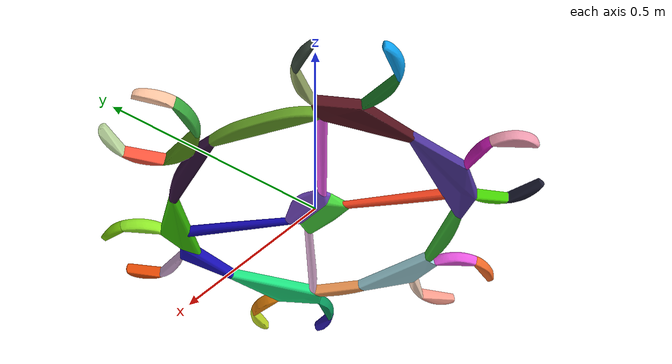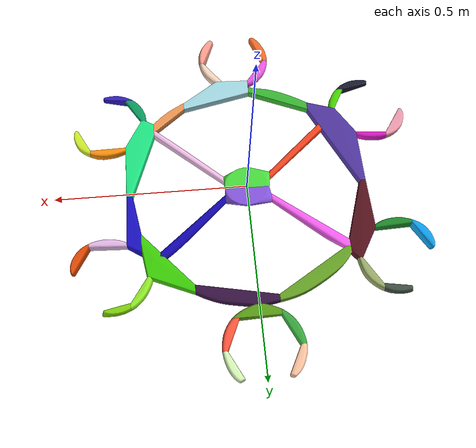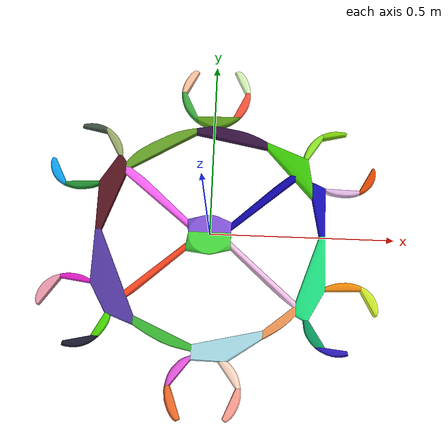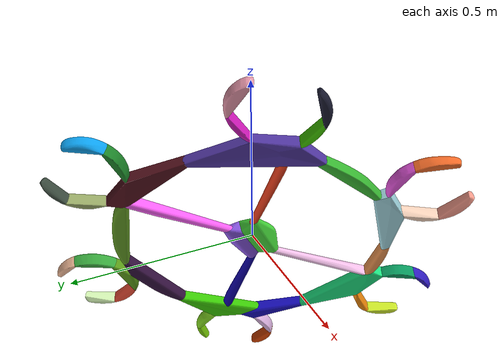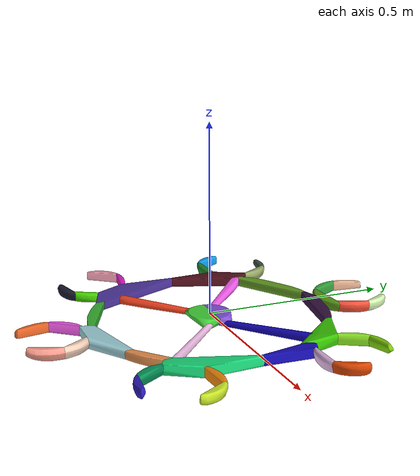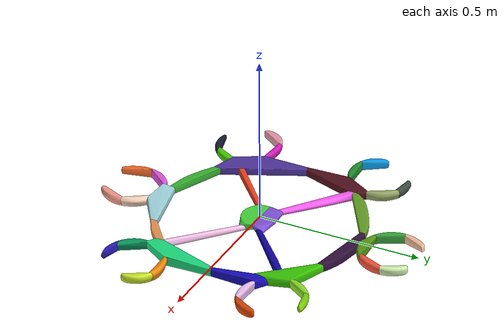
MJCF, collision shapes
<mujoco model="wine_glass_rack_center">
  <default>
    <default class="visual">
      <geom group="2" type="mesh" contype="0" conaffinity="0"/>
    </default>
    <default class="collision">
      <geom group="3" type="mesh"/>
    </default>
  </default>
  <asset>
    <mesh file="wine_glass_rack_center.obj"/>
    <mesh file="wine_glass_rack_center_collision_0.obj"/>
    <mesh file="wine_glass_rack_center_collision_1.obj"/>
    <mesh file="wine_glass_rack_center_collision_2.obj"/>
    <mesh file="wine_glass_rack_center_collision_3.obj"/>
    <mesh file="wine_glass_rack_center_collision_4.obj"/>
    <mesh file="wine_glass_rack_center_collision_5.obj"/>
    <mesh file="wine_glass_rack_center_collision_6.obj"/>
    <mesh file="wine_glass_rack_center_collision_7.obj"/>
    <mesh file="wine_glass_rack_center_collision_8.obj"/>
    <mesh file="wine_glass_rack_center_collision_9.obj"/>
    <mesh file="wine_glass_rack_center_collision_10.obj"/>
    <mesh file="wine_glass_rack_center_collision_11.obj"/>
    <mesh file="wine_glass_rack_center_collision_12.obj"/>
    <mesh file="wine_glass_rack_center_collision_13.obj"/>
    <mesh file="wine_glass_rack_center_collision_14.obj"/>
    <mesh file="wine_glass_rack_center_collision_15.obj"/>
    <mesh file="wine_glass_rack_center_collision_16.obj"/>
    <mesh file="wine_glass_rack_center_collision_17.obj"/>
    <mesh file="wine_glass_rack_center_collision_18.obj"/>
    <mesh file="wine_glass_rack_center_collision_19.obj"/>
    <mesh file="wine_glass_rack_center_collision_20.obj"/>
    <mesh file="wine_glass_rack_center_collision_21.obj"/>
    <mesh file="wine_glass_rack_center_collision_22.obj"/>
    <mesh file="wine_glass_rack_center_collision_23.obj"/>
    <mesh file="wine_glass_rack_center_collision_24.obj"/>
    <mesh file="wine_glass_rack_center_collision_25.obj"/>
    <mesh file="wine_glass_rack_center_collision_26.obj"/>
    <mesh file="wine_glass_rack_center_collision_27.obj"/>
    <mesh file="wine_glass_rack_center_collision_28.obj"/>
    <mesh file="wine_glass_rack_center_collision_29.obj"/>
    <mesh file="wine_glass_rack_center_collision_30.obj"/>
    <mesh file="wine_glass_rack_center_collision_31.obj"/>
    <mesh file="wine_glass_rack_center_collision_32.obj"/>
    <mesh file="wine_glass_rack_center_collision_33.obj"/>
    <mesh file="wine_glass_rack_center_collision_34.obj"/>
    <mesh file="wine_glass_rack_center_collision_35.obj"/>
    <mesh file="wine_glass_rack_center_collision_36.obj"/>
    <mesh file="wine_glass_rack_center_collision_37.obj"/>
    <mesh file="wine_glass_rack_center_collision_38.obj"/>
    <mesh file="wine_glass_rack_center_collision_39.obj"/>
    <mesh file="wine_glass_rack_center_collision_40.obj"/>
  </asset>
  <worldbody>
    <body name="wine_glass_rack_center">
      <geom mesh="wine_glass_rack_center" class="visual"/>
      <geom mesh="wine_glass_rack_center_collision_0" rgba="0.2312351316357827 0.7916796683662719 0.021230891704921317 1" class="collision"/>
      <geom mesh="wine_glass_rack_center_collision_1" rgba="0.9311220019946362 0.5828176247583083 0.31777846854400305 1" class="collision"/>
      <geom mesh="wine_glass_rack_center_collision_2" rgba="0.4925270351944723 0.818322192743814 0.03783316834204653 1" class="collision"/>
      <geom mesh="wine_glass_rack_center_collision_3" rgba="0.2754678177465206 0.8254852383760434 0.008118313194254045 1" class="collision"/>
      <geom mesh="wine_glass_rack_center_collision_4" rgba="0.8054845307577458 0.9154357270536961 0.1605311177482378 1" class="collision"/>
      <geom mesh="wine_glass_rack_center_collision_5" rgba="0.9652457451918555 0.828470797108509 0.7377031648374289 1" class="collision"/>
      <geom mesh="wine_glass_rack_center_collision_6" rgba="0.030633077024594058 0.6025026952972568 0.3672323693901407 1" class="collision"/>
      <geom mesh="wine_glass_rack_center_collision_7" rgba="0.605195319395541 0.6753548797337352 0.4100527281499491 1" class="collision"/>
      <geom mesh="wine_glass_rack_center_collision_8" rgba="0.33153221414010103 0.07147386537492739 0.11545612930818294 1" class="collision"/>
      <geom mesh="wine_glass_rack_center_collision_9" rgba="0.3120281259569144 0.20922385385426534 0.6229194241830153 1" class="collision"/>
      <geom mesh="wine_glass_rack_center_collision_10" rgba="0.11161177833030889 0.8851460989228362 0.502880900659646 1" class="collision"/>
      <geom mesh="wine_glass_rack_center_collision_11" rgba="0.5582589757076499 0.9102526767429725 0.15484081541431938 1" class="collision"/>
      <geom mesh="wine_glass_rack_center_collision_12" rgba="0.24939486507358088 0.31232953223149273 0.26382541728953024 1" class="collision"/>
      <geom mesh="wine_glass_rack_center_collision_13" rgba="0.9765737747909278 0.5557162453670921 0.048656783247363444 1" class="collision"/>
      <geom mesh="wine_glass_rack_center_collision_14" rgba="0.18944846228834755 0.11216455372492595 0.7495134485934738 1" class="collision"/>
      <geom mesh="wine_glass_rack_center_collision_15" rgba="0.10459748987880146 0.1076951089257725 0.19172700250655295 1" class="collision"/>
      <geom mesh="wine_glass_rack_center_collision_16" rgba="0.0954778050368198 0.055248507088398124 0.7453152789947944 1" class="collision"/>
      <geom mesh="wine_glass_rack_center_collision_17" rgba="0.9864401476981071 0.3748348034328891 0.9639362565549039 1" class="collision"/>
      <geom mesh="wine_glass_rack_center_collision_18" rgba="0.9670321721298164 0.26716006135042913 0.12319638303883218 1" class="collision"/>
      <geom mesh="wine_glass_rack_center_collision_19" rgba="0.4003923731395409 0.6342544842817098 0.14689111338878835 1" class="collision"/>
      <geom mesh="wine_glass_rack_center_collision_20" rgba="0.2810098626940054 0.8574731979230097 0.2371819236614956 1" class="collision"/>
      <geom mesh="wine_glass_rack_center_collision_21" rgba="0.9507349750298426 0.7501423609262644 0.9132756636978733 1" class="collision"/>
      <geom mesh="wine_glass_rack_center_collision_22" rgba="0.9866676991615806 0.3309326923769853 0.2317663999975632 1" class="collision"/>
      <geom mesh="wine_glass_rack_center_collision_23" rgba="0.8775641139235979 0.2827382874410702 0.018601256911820463 1" class="collision"/>
      <geom mesh="wine_glass_rack_center_collision_24" rgba="0.6375613002615167 0.845983909616981 0.8832381611912272 1" class="collision"/>
      <geom mesh="wine_glass_rack_center_collision_25" rgba="0.06916915717280814 0.02355941701503017 0.6806478275358822 1" class="collision"/>
      <geom mesh="wine_glass_rack_center_collision_26" rgba="0.9142047434497699 0.34008009704037456 0.8804367280919411 1" class="collision"/>
      <geom mesh="wine_glass_rack_center_collision_27" rgba="0.35641631039236976 0.6101242711886117 0.09471628461047277 1" class="collision"/>
      <geom mesh="wine_glass_rack_center_collision_28" rgba="0.8916832346957785 0.7256384657426962 0.9096937063803308 1" class="collision"/>
      <geom mesh="wine_glass_rack_center_collision_29" rgba="0.5213450685169122 0.33085811866514914 0.8653968204604254 1" class="collision"/>
      <geom mesh="wine_glass_rack_center_collision_30" rgba="0.9240006752568686 0.6020822524218955 0.6790156573897684 1" class="collision"/>
      <geom mesh="wine_glass_rack_center_collision_31" rgba="0.22210276474888113 0.6574947212839852 0.24036660743779892 1" class="collision"/>
      <geom mesh="wine_glass_rack_center_collision_32" rgba="0.22403104380585614 0.7142681692764073 0.1983997889914535 1" class="collision"/>
      <geom mesh="wine_glass_rack_center_collision_33" rgba="0.1216546160299905 0.5428263734428431 0.17338626430084414 1" class="collision"/>
      <geom mesh="wine_glass_rack_center_collision_34" rgba="0.9485578954671796 0.4184970400333482 0.15838660688713457 1" class="collision"/>
      <geom mesh="wine_glass_rack_center_collision_35" rgba="0.9857709721463142 0.7600898013998048 0.6223804738517857 1" class="collision"/>
      <geom mesh="wine_glass_rack_center_collision_36" rgba="0.047129579844798486 0.6299326335076181 0.9336489251526103 1" class="collision"/>
      <geom mesh="wine_glass_rack_center_collision_37" rgba="0.8544022941430713 0.10614335922442741 0.7609647357964094 1" class="collision"/>
      <geom mesh="wine_glass_rack_center_collision_38" rgba="0.9856362439361677 0.6179842970028954 0.5528692011542309 1" class="collision"/>
      <geom mesh="wine_glass_rack_center_collision_39" rgba="0.8353813167770306 0.9616897305118154 0.7075504885753469 1" class="collision"/>
      <geom mesh="wine_glass_rack_center_collision_40" rgba="0.21382138704569664 0.07354688179365143 0.25540624331504214 1" class="collision"/>
    </body>
  </worldbody>
</mujoco>
